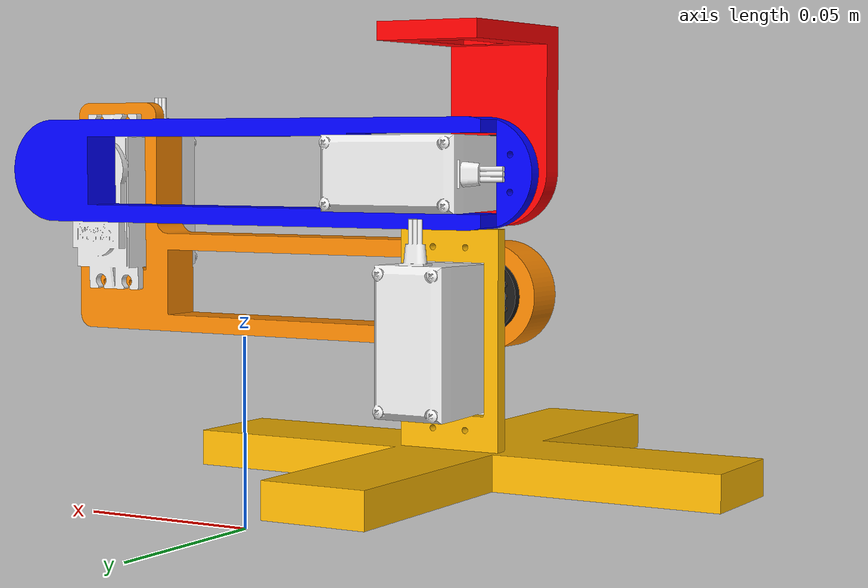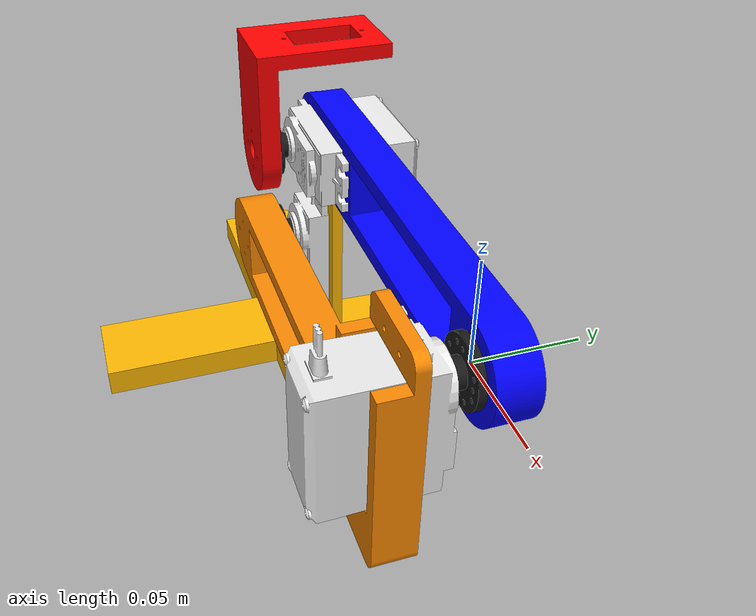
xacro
<?xml version="1.0"?>
<robot xmlns:xacro="http://www.ros.org/wiki/xacro" name="dummy">
    <xacro:arg name="initial_positions_file" default="initial_positions.yaml" />

    <!-- Import dummy urdf file -->
    <xacro:include filename="$(find dummy_description)/model/robot.urdf" />

    <!-- Import control_xacro -->
    <xacro:include filename="dummy.ros2_control.xacro" />

    <xacro:dummy_ros2_control name="Dummy" initial_positions_file="$(arg initial_positions_file)"/>

</robot>

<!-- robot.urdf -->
<robot name="dummy">
<link name="base_link"></link>
<joint name="base_link_to_base" type="fixed">
<parent link="base_link"/>
<child link="base" />
<origin rpy="0.0 0 0" xyz="0 0 0"/>
</joint>
<link name="base">
<visual>
<origin xyz="-0.047828882379369525024 -0.065342802966927890362 0.006802502096687798594" rpy="1.0189195870939437146e-07 1.7026717884374556317e-06 6.1825039504151239402e-08" />
<geometry>
<mesh filename="package://dummy_description/model/base.stl"/>
</geometry>
<material name="base_material">
<color rgba="0.98039215686274505668 0.71372549019607844922 0.0039215686274509803377 1.0"/>
</material>
</visual>
<collision>
<origin xyz="-0.047828882379369525024 -0.065342802966927890362 0.006802502096687798594" rpy="1.0189195870939437146e-07 1.7026717884374556317e-06 6.1825039504151239402e-08" />
<geometry>
<mesh filename="package://dummy_description/model/base.stl"/>
</geometry>
</collision>
<inertial>
<origin xyz="-0.032468365597820368629 -0.061241024288252947361 0.013179638877296331531" rpy="0 0 0"/>
<mass value="0.095300979777088387634" />
<inertia ixx="0.00011801893972051629388" ixy="-2.1494999035289338651e-12"  ixz="1.7779428765101765104e-10" iyy="0.00011807354565986507655" iyz="-1.2604448510708288921e-06" izz="0.00022239393538468245348" />
</inertial>
</link>

<link name="mg996r_v2">
<visual>
<origin xyz="-0.01450000000000000594 0.004999999999999997502 0" rpy="3.141592653589793116 -5.6000000414897895305e-16 2.1175823681357513179e-22" />
<geometry>
<mesh filename="package://dummy_description/model/mg996r_v2.stl"/>
</geometry>
<material name="mg996r_v2_material">
<color rgba="0.91764705882352937127 0.91764705882352937127 0.91764705882352937127 1.0"/>
</material>
</visual>
<collision>
<origin xyz="-0.01450000000000000594 0.004999999999999997502 0" rpy="3.141592653589793116 -5.6000000414897895305e-16 2.1175823681357513179e-22" />
<geometry>
<mesh filename="package://dummy_description/model/mg996r_v2.stl"/>
</geometry>
</collision>
<inertial>
<origin xyz="-0.024255671585750017416 0.0049999989393006566418 0.0088504927765015398849" rpy="0 0 0"/>
<mass value="0.055791861264000007503" />
<inertia ixx="8.6044198419255101489e-06" ixy="-5.0486636963735292566e-12"  ixz="3.4441859625622038471e-08" iyy="1.4679957311313164065e-05" iyz="-1.0614227360729792485e-12" izz="9.7426395371235840814e-06" />
</inertial>
</link>

<link name="arm_round">
<visual>
<origin xyz="5.5511151231257827021e-17 -7.5633943552588789316e-16 -0.00060000000000000330846" rpy="7.7306692010095163408e-16 5.739070370565970942e-24 0" />
<geometry>
<mesh filename="package://dummy_description/model/arm_round.stl"/>
</geometry>
<material name="arm_round_material">
<color rgba="0.098039215686274508443 0.098039215686274508443 0.098039215686274508443 1.0"/>
</material>
</visual>
<collision>
<origin xyz="5.5511151231257827021e-17 -7.5633943552588789316e-16 -0.00060000000000000330846" rpy="7.7306692010095163408e-16 5.739070370565970942e-24 0" />
<geometry>
<mesh filename="package://dummy_description/model/arm_round.stl"/>
</geometry>
</collision>
<inertial>
<origin xyz="5.4582290894936453343e-17 -7.5451188276967157162e-16 0.0003179644200924597406" rpy="0 0 0"/>
<mass value="0.00045359236800000010507" />
<inertia ixx="1.2159854622929928994e-08" ixy="2.5749493748610378174e-30"  ixz="-1.7020787509523014611e-31" iyy="1.2159854622929909142e-08" iyz="-8.4021125543109597233e-24" izz="2.3028399552020607303e-08" />
</inertial>
</link>

<link name="seg_one">
<visual>
<origin xyz="0.053705249205231675447 -0.0037678245534087523305 0" rpy="1.570796326794896558 -3.0669649817544585376e-24 -2.1175823681357508477e-22" />
<geometry>
<mesh filename="package://dummy_description/model/seg_one.stl"/>
</geometry>
<material name="seg_one_material">
<color rgba="0.97254901960784312376 0.52941176470588235947 0.0039215686274509803377 1.0"/>
</material>
</visual>
<collision>
<origin xyz="0.053705249205231675447 -0.0037678245534087523305 0" rpy="1.570796326794896558 -3.0669649817544585376e-24 -2.1175823681357508477e-22" />
<geometry>
<mesh filename="package://dummy_description/model/seg_one.stl"/>
</geometry>
</collision>
<inertial>
<origin xyz="0.072753258141030258122 0.0037025801574412662079 -0.006356985632083716857" rpy="0 0 0"/>
<mass value="0.038138749034982870334" />
<inertia ixx="9.9918489081650458024e-06" ixy="7.7426322161545294806e-06"  ixz="-3.1224600402499617079e-07" iyy="0.00011258033201329481" iyz="2.5293281233327603064e-07" izz="0.00012148131830536844323" />
</inertial>
</link>

<link name="mg996r_v2_2">
<visual>
<origin xyz="-0.014500000000000012879 -0.0050000000000000183187 0" rpy="-3.141592653589793116 -5.6000000414897895305e-16 -2.1175823681357513179e-22" />
<geometry>
<mesh filename="package://dummy_description/model/mg996r_v2.stl"/>
</geometry>
<material name="mg996r_v2_material">
<color rgba="0.91764705882352937127 0.91764705882352937127 0.91764705882352937127 1.0"/>
</material>
</visual>
<collision>
<origin xyz="-0.014500000000000012879 -0.0050000000000000183187 0" rpy="-3.141592653589793116 -5.6000000414897895305e-16 -2.1175823681357513179e-22" />
<geometry>
<mesh filename="package://dummy_description/model/mg996r_v2.stl"/>
</geometry>
</collision>
<inertial>
<origin xyz="-0.024255671585750024355 -0.0050000010606993591789 0.0088504927765015398849" rpy="0 0 0"/>
<mass value="0.055791861264000007503" />
<inertia ixx="8.6044198419255101489e-06" ixy="-5.0486636963735389501e-12"  ixz="3.4441859625622038471e-08" iyy="1.4679957311313164065e-05" iyz="-1.0614227360729790466e-12" izz="9.7426395371235840814e-06" />
</inertial>
</link>

<link name="arm_round_2">
<visual>
<origin xyz="6.9388939039072283776e-17 -7.6327832942979512154e-16 -0.00059999999999999636957" rpy="7.7306690686606183323e-16 4.2330907262883670288e-24 -2.1175823681357508477e-22" />
<geometry>
<mesh filename="package://dummy_description/model/arm_round.stl"/>
</geometry>
<material name="arm_round_material">
<color rgba="0.098039215686274508443 0.098039215686274508443 0.098039215686274508443 1.0"/>
</material>
</visual>
<collision>
<origin xyz="6.9388939039072283776e-17 -7.6327832942979512154e-16 -0.00059999999999999636957" rpy="7.7306690686606183323e-16 4.2330907262883670288e-24 -2.1175823681357508477e-22" />
<geometry>
<mesh filename="package://dummy_description/model/arm_round.stl"/>
</geometry>
</collision>
<inertial>
<origin xyz="6.8460078689721750587e-17 -7.6145077663713135542e-16 0.00031796442009246667949" rpy="0 0 0"/>
<mass value="0.00045359236800000010507" />
<inertia ixx="1.2159854622929928994e-08" ixy="-2.5749493748610413206e-30"  ixz="-4.7874986447740384758e-31" iyy="1.215985462292991245e-08" iyz="-8.4021118009103021466e-24" izz="2.3028399552020607303e-08" />
</inertial>
</link>

<link name="seg_two">
<visual>
<origin xyz="-0.077810930135565364862 0.0039761346122249852097 0" rpy="1.570796326794896558 5.6592755122810551558e-24 2.1175823681357508477e-22" />
<geometry>
<mesh filename="package://dummy_description/model/seg_two.stl"/>
</geometry>
<material name="seg_two_material">
<color rgba="0 0 1 1.0"/>
</material>
</visual>
<collision>
<origin xyz="-0.077810930135565364862 0.0039761346122249852097 0" rpy="1.570796326794896558 5.6592755122810551558e-24 2.1175823681357508477e-22" />
<geometry>
<mesh filename="package://dummy_description/model/seg_two.stl"/>
</geometry>
</collision>
<inertial>
<origin xyz="-0.054668888422984771025 -0.0072500000000000099087 -0.006368033000097163103" rpy="0 0 0"/>
<mass value="0.030280862737785154554" />
<inertia ixx="3.9672174108226673558e-06" ixy="8.4009096397192458938e-28"  ixz="3.8872108409597853819e-07" iyy="7.5080652377266187368e-05" iyz="1.0759990517693536136e-27" izz="7.8182858488606501871e-05" />
</inertial>
</link>

<link name="mg996r_v2_3">
<visual>
<origin xyz="0.034500000000000002887 -0.0049999999999999905631 6.9388939039072283776e-18" rpy="3.141592653589793116 -5.6000000031574594379e-16 0" />
<geometry>
<mesh filename="package://dummy_description/model/mg996r_v2.stl"/>
</geometry>
<material name="mg996r_v2_material">
<color rgba="0.91764705882352937127 0.91764705882352937127 0.91764705882352937127 1.0"/>
</material>
</visual>
<collision>
<origin xyz="0.034500000000000002887 -0.0049999999999999905631 6.9388939039072283776e-18" rpy="3.141592653589793116 -5.6000000031574594379e-16 0" />
<geometry>
<mesh filename="package://dummy_description/model/mg996r_v2.stl"/>
</geometry>
</collision>
<inertial>
<origin xyz="0.02474432841424999141 -0.0050000010606993314233 0.0088504927765015468238" rpy="0 0 0"/>
<mass value="0.055791861264000007503" />
<inertia ixx="8.604419841925513537e-06" ixy="-5.0486636963735341033e-12"  ixz="3.4441859625622045088e-08" iyy="1.4679957311313160677e-05" iyz="-1.0614227360729790466e-12" izz="9.7426395371235840814e-06" />
</inertial>
</link>

<link name="arm_round_3">
<visual>
<origin xyz="5.5511151231257827021e-17 -7.7021722333370234992e-16 -0.00060000000000000330846" rpy="7.7306691041560774059e-16 -1.3234889800848442798e-23 0" />
<geometry>
<mesh filename="package://dummy_description/model/arm_round.stl"/>
</geometry>
<material name="arm_round_material">
<color rgba="0.098039215686274508443 0.098039215686274508443 0.098039215686274508443 1.0"/>
</material>
</visual>
<collision>
<origin xyz="5.5511151231257827021e-17 -7.7021722333370234992e-16 -0.00060000000000000330846" rpy="7.7306691041560774059e-16 -1.3234889800848442798e-23 0" />
<geometry>
<mesh filename="package://dummy_description/model/arm_round.stl"/>
</geometry>
</collision>
<inertial>
<origin xyz="5.4582290886790330509e-17 -7.6838967056618914579e-16 0.0003179644200924597406" rpy="0 0 0"/>
<mass value="0.00045359236800000010507" />
<inertia ixx="1.2159854622929928994e-08" ixy="-7.7248481245831148535e-30"  ixz="-1.4384399443209125771e-31" iyy="1.215985462292991245e-08" iyz="-8.4021123886847358024e-24" izz="2.3028399552020607303e-08" />
</inertial>
</link>

<link name="wrist">
<visual>
<origin xyz="-0.0095673749088002468799 0.0042428395003080328352 0" rpy="1.570796326794896558 1.3234889800848442798e-23 0" />
<geometry>
<mesh filename="package://dummy_description/model/wrist.stl"/>
</geometry>
<material name="wrist_material">
<color rgba="1 0 0 1.0"/>
</material>
</visual>
<collision>
<origin xyz="-0.0095673749088002468799 0.0042428395003080328352 0" rpy="1.570796326794896558 1.3234889800848442798e-23 0" />
<geometry>
<mesh filename="package://dummy_description/model/wrist.stl"/>
</geometry>
</collision>
<inertial>
<origin xyz="-0.020814578421039824779 0.0072504885487388055082 0.003298034778637689516" rpy="0 0 0"/>
<mass value="0.016076987416131532926" />
<inertia ixx="3.8911048182727829464e-06" ixy="-1.6348585669320251243e-10"  ixz="1.8249846373231894045e-06" iyy="7.0776930926812439793e-06" iyz="3.3758449662823616254e-11" izz="5.70469681037147801e-06" />
</inertial>
</link>

<joint name="wrist_mount" type="fixed">
<origin xyz="4.1633363423443370266e-17 0.0071999999999992347899 0.0018999999999999850342" rpy="3.141592653589793116 1.9249019073327577723e-15 -7.4941282359972137417e-16" />
<parent link="arm_round_3" />
<child link="wrist" />
<axis xyz="0 0 1"/>
<limit effort="1" velocity="20" />
<joint_properties friction="0.0"/>
</joint>

<joint name="wrist" type="revolute">
<origin xyz="0.034538107933987892417 -0.0050000032706329633481 -0.015499999999999986011" rpy="-3.1415926535897922278 -6.1232673501503056481e-17 -1.5707963267948907848" />
<parent link="mg996r_v2_3" />
<child link="arm_round_3" />
<axis xyz="0 0 1"/>
<limit effort="1" velocity="20" lower="-0" upper="3.141592653589793116"/>
<joint_properties friction="0.0"/>
</joint>

<joint name="wrist_servo" type="fixed">
<origin xyz="-0.099000000000000004663 -0.0022500000000000019984 6.9388939039072283776e-18" rpy="-3.1415926535897926719 6.3475081490357335169e-16 3.141592653589793116" />
<parent link="seg_two" />
<child link="mg996r_v2_3" />
<axis xyz="0 0 1"/>
<limit effort="1" velocity="20" />
<joint_properties friction="0.0"/>
</joint>

<joint name="forearm_mount" type="fixed">
<origin xyz="6.9388939039072283776e-17 -0.0072000000000007752243 0.0018999999999999919731" rpy="-3.1415926535897926719 2.3408220465313534229e-16 -1.0587911840678691044e-20" />
<parent link="arm_round_2" />
<child link="seg_two" />
<axis xyz="0 0 1"/>
<limit effort="1" velocity="20" />
<joint_properties friction="0.0"/>
</joint>

<joint name="elbow" type="revolute">
<origin xyz="-0.014461892066012130287 -0.0050000032706329772259 -0.015500000000000027645" rpy="-3.141592653589793116 1.1221675757108101127e-15 -1.5707963267949012209" />
<parent link="mg996r_v2_2" />
<child link="arm_round_2" />
<axis xyz="0 0 1"/>
<limit effort="1" velocity="20" lower="-0" upper="3.141592653589793116"/>
<joint_properties friction="0.0"/>
</joint>

<joint name="elbow_servo" type="fixed">
<origin xyz="0.125 -0.041750000000000023204 0" rpy="3.141592653589793116 -0 -1.570796326794896558" />
<parent link="seg_one" />
<child link="mg996r_v2_2" />
<axis xyz="0 0 1"/>
<limit effort="1" velocity="20" />
<joint_properties friction="0.0"/>
</joint>

<joint name="shoulder_horn" type="fixed">
<origin xyz="5.5511151231257827021e-17 0.0071999999999992347899 0.0019000000000000127898" rpy="-3.1415926535897922278 -1.0323879464612367862e-23 -2.7724023638343179296e-17" />
<parent link="arm_round" />
<child link="seg_one" />
<axis xyz="0 0 1"/>
<limit effort="1" velocity="20" />
<joint_properties friction="0.0"/>
</joint>

<joint name="shoulder" type="revolute">
<origin xyz="-0.01446189206601210947 0.0049999967293670455337 -0.015499999999999999889" rpy="3.141592653589793116 2.8943195551387177825e-16 1.570796326794891673" />
<parent link="mg996r_v2" />
<child link="arm_round" />
<axis xyz="0 0 1"/>
<limit effort="1" velocity="20" lower="-0" upper="3.141592653589793116"/>
<joint_properties friction="0.0"/>
</joint>

<joint name="shoulder_servo" type="fixed">
<origin xyz="-0.03746826625245763126 -0.053637351761170709574 0.071802485648743613611" rpy="-1.5110252122491361071 -1.5707946210771026596 -0.059771052749696053363" />
<parent link="base" />
<child link="mg996r_v2" />
<axis xyz="0 0 1"/>
<limit effort="1" velocity="20" />
<joint_properties friction="0.0"/>
</joint>

</robot>
